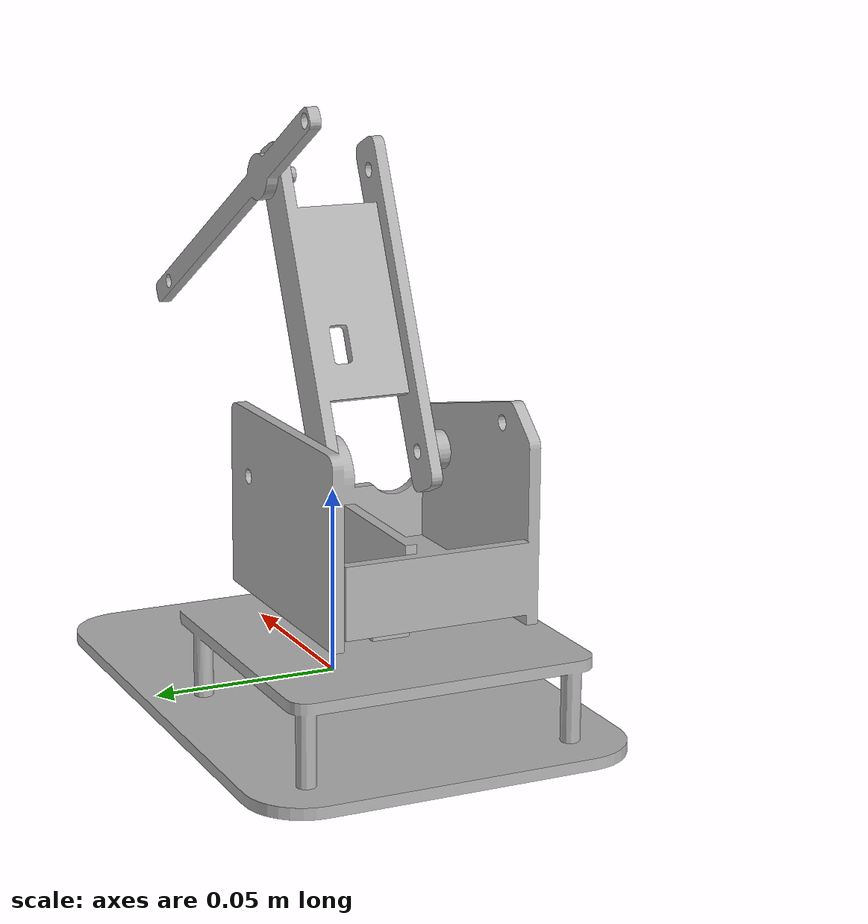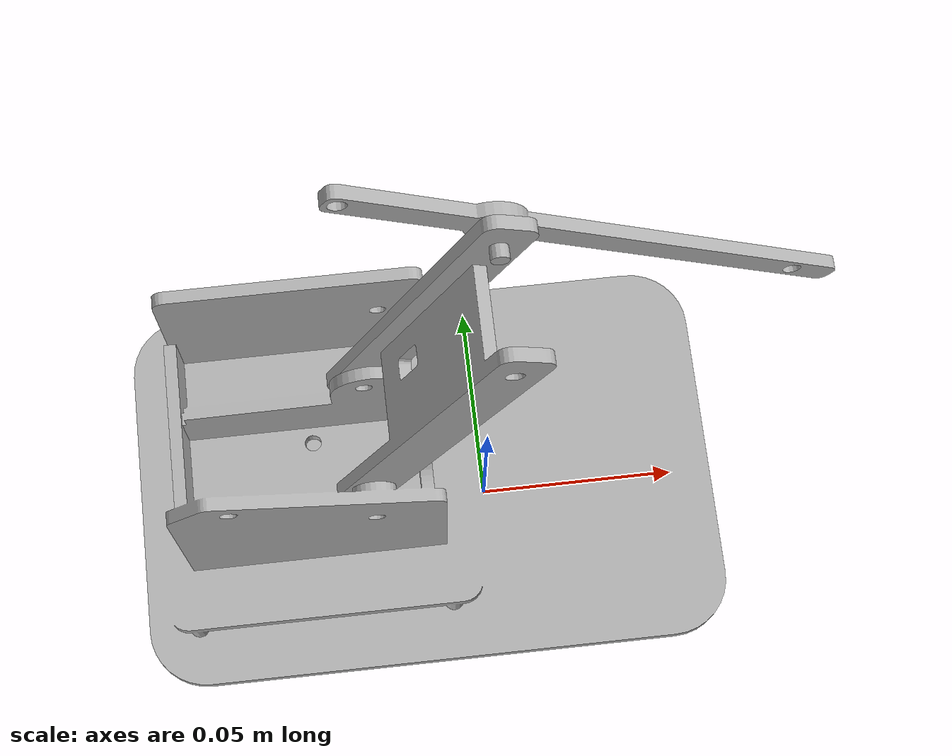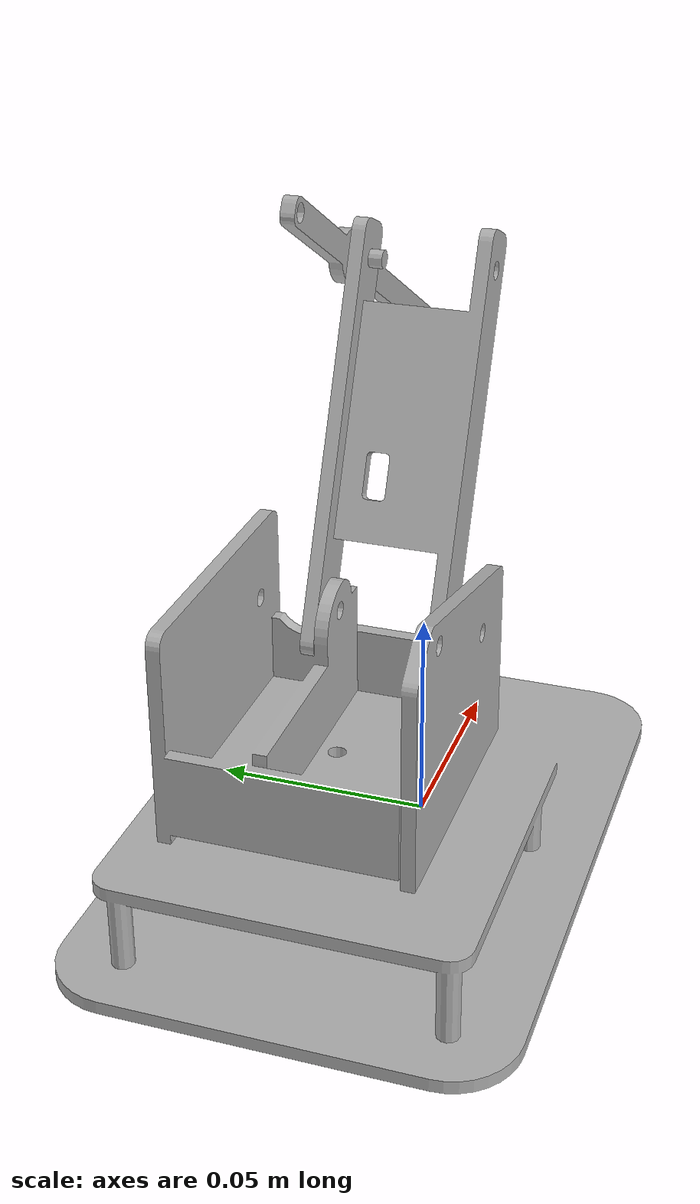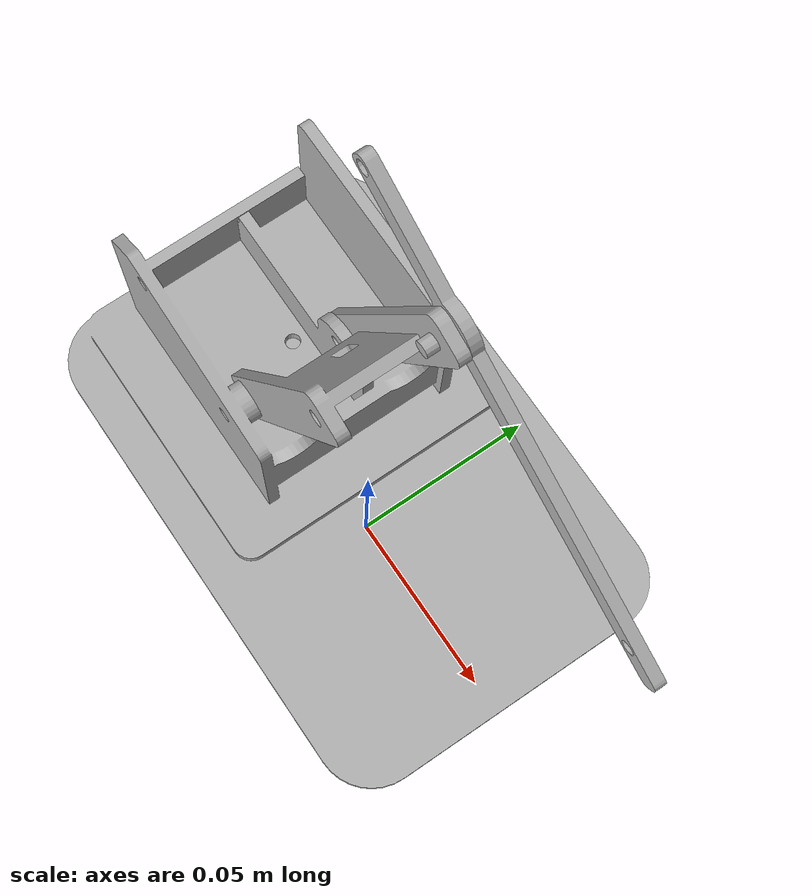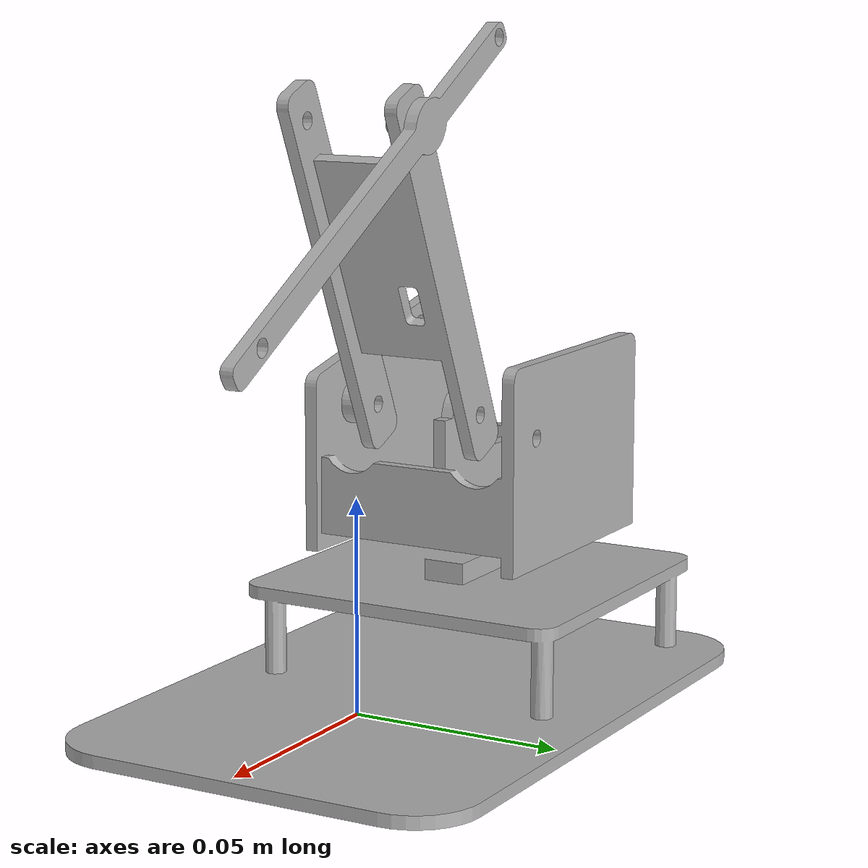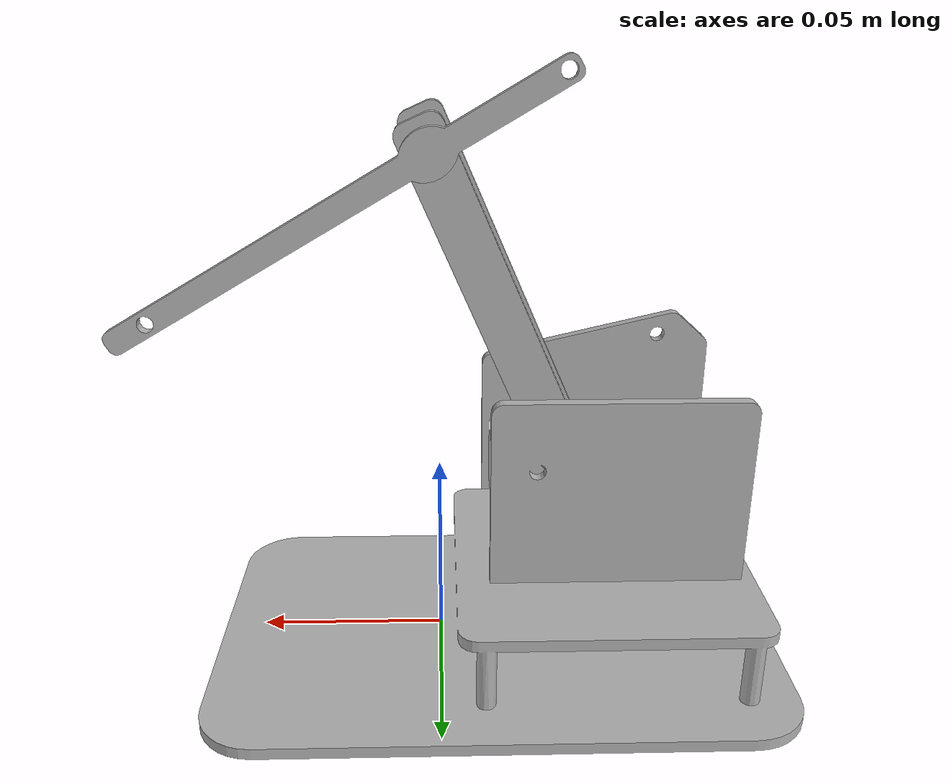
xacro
<?xml version="1.0" ?>
<robot name="sg90_mechanical_arm" xmlns:xacro="http://www.ros.org/wiki/xacro">

	<xacro:include filename="$(find steering_engine)/urdf/materials.xacro" />
	<xacro:include filename="$(find steering_engine)/urdf/sg90_mechanical_arm.trans" />
	<xacro:include filename="$(find steering_engine)/urdf/sg90_mechanical_arm.gazebo" />
	<link name="base_link">
	  <inertial>
	    <origin xyz="-0.024026499260378316 0.0060624763789460965 0.00843996637468139" rpy="0 0 0"/>
	    <mass value="0.5154028624203417"/>
	    <inertia ixx="0.000431" iyy="0.000868" izz="0.00119" ixy="0.0" iyz="-0.0" ixz="6.7e-05"/>
	  </inertial>
	  <visual>
	    <origin xyz="0 0 0" rpy="0 0 0"/>
	    <geometry>
	      <mesh filename="package://steering_engine/meshes/base_link.stl" scale="0.001 0.001 0.001"/>
	    </geometry>
	    <material name="silver"/>
	  </visual>
	  <collision>
	    <origin xyz="0 0 0" rpy="0 0 0"/>
	    <geometry>
	      <mesh filename="package://steering_engine/meshes/base_link.stl" scale="0.001 0.001 0.001"/>
	    </geometry>
	  </collision>
	</link>

	<link name="middle_1_1">
	  <inertial>
	    <origin xyz="0.01513320402587121 0.014933333665403777 0.034358753097481154" rpy="0 0 0"/>
	    <mass value="0.07756212690094338"/>
	    <inertia ixx="4.5e-05" iyy="4.1e-05" izz="1.8e-05" ixy="-0.0" iyz="-0.0" ixz="-1.5e-05"/>
	  </inertial>
	  <visual>
	    <origin xyz="0.027994 0.013938 -0.062791" rpy="0 0 0"/>
	    <geometry>
	      <mesh filename="package://steering_engine/meshes/middle_1_1.stl" scale="0.001 0.001 0.001"/>
	    </geometry>
	    <material name="silver"/>
	  </visual>
	</link>

	<link name="rotary_table_1">
	  <inertial>
	    <origin xyz="-0.0016625287909776201 0.00034335070993870426 0.0102317425159636" rpy="0 0 0"/>
	    <mass value="0.26679313042606956"/>
	    <inertia ixx="0.000154" iyy="0.000144" izz="0.00021" ixy="-2e-06" iyz="1e-06" ixz="-1e-06"/>
	  </inertial>
	  <visual>
	    <origin xyz="0.041992 -0.006062 -0.037" rpy="0 0 0"/>
	    <geometry>
	      <mesh filename="package://steering_engine/meshes/rotary_table_1.stl" scale="0.001 0.001 0.001"/>
	    </geometry>
	    <material name="silver"/>
	  </visual>
	</link>

	<link name="left_3_1">
	  <inertial>
	    <origin xyz="0.01931943652113552 0.008316439058373582 -0.011160565948617404" rpy="0 0 0"/>
	    <mass value="0.018760305555478165"/>
	    <inertia ixx="6e-06" iyy="2.2e-05" izz="1.6e-05" ixy="-0.0" iyz="0.0" ixz="9e-06"/>
	  </inertial>
	  <visual>
	    <origin xyz="-0.001834 -0.013062 -0.130513" rpy="0 0 0"/>
	    <geometry>
	      <mesh filename="package://steering_engine/meshes/left_3_1.stl" scale="0.001 0.001 0.001"/>
	    </geometry>
	    <material name="silver"/>
	  </visual>
	</link>

	<!-- add a dummy link -->
	<link name="dummy_link"/>
	<!-- change the root link to be child of the dummy link -->
	<joint name="dummy_joint" type="fixed">
	  <parent link="dummy_link"/>
	  <child link="base_link"/>
	  <origin xyz="0 0 0" rpy="0 0 0"/>
	</joint>

	<joint name="middle_rotation_joint" type="continuous">
	  <origin xyz="0.013998 -0.02 0.025791" rpy="0 0 0"/>
	  <limit effort="10.0" lower="-1.0" upper="2.0" velocity="1.0" />
	  <parent link="rotary_table_1"/>
	  <child link="middle_1_1"/>
	  <axis xyz="-0.0 -1.0 -0.0"/>
	</joint>

	<joint name="rotation_baselink_joint" type="continuous">
	  <origin xyz="-0.041992 0.006062 0.040" rpy="0 0 0"/>
	  <limit effort="10.0" lower="-0.785" upper="0.785" velocity="1.0" />
	  <parent link="base_link"/>
	  <child link="rotary_table_1"/>
	  <axis xyz="-0.0 -0.0 1.0"/>
	</joint>

	<joint name="left3_middle_joint" type="continuous">
	  <origin xyz="0.029828 0.024 0.067722" rpy="0 0 0"/>
	  <limit effort="10.0" velocity="1.0" />
	  <parent link="middle_1_1"/>
	  <child link="left_3_1"/>
	  <axis xyz="0.0 1.0 0.0"/>
	</joint>

</robot>

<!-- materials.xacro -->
<robot name="sg90_mechanical_arm" xmlns:xacro="http://www.ros.org/wiki/xacro" >

<material name="silver">
  <color rgba="0.700 0.700 0.700 1.000"/>
</material>

</robot>

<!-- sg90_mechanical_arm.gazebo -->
<robot name="sg90_mechanical_arm" xmlns:xacro="http://www.ros.org/wiki/xacro" >

	<xacro:property name="body_color" value="Gazebo/Silver" />

	<gazebo>
	  <plugin name="control" filename="libgazebo_ros_control.so"/>
	</gazebo>
	<gazebo reference="base_link">
	  <material>${body_color}</material>
	  <mu1>0.9</mu1>
	  <mu2>0.9</mu2>
	  <selfCollide>true</selfCollide>
	  <gravity>true</gravity>
	</gazebo>

	<gazebo reference="middle_1_1">
	  <material>${body_color}</material>
	  <mu1>0.2</mu1>
	  <mu2>0.2</mu2>
	  <selfCollide>false</selfCollide>
	</gazebo>

	<gazebo reference="rotary_table_1">
	  <material>${body_color}</material>
	  <mu1>0.2</mu1>
	  <mu2>0.2</mu2>
	  <selfCollide>false</selfCollide>
	</gazebo>

	<gazebo reference="left_3_1">
	  <material>${body_color}</material>
	  <mu1>0.2</mu1>
	  <mu2>0.2</mu2>
	  <selfCollide>false</selfCollide>
	</gazebo>

</robot>
